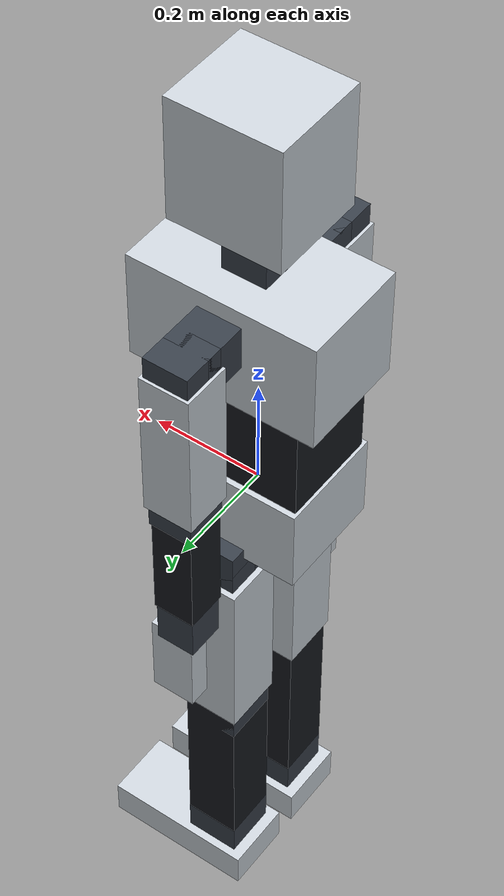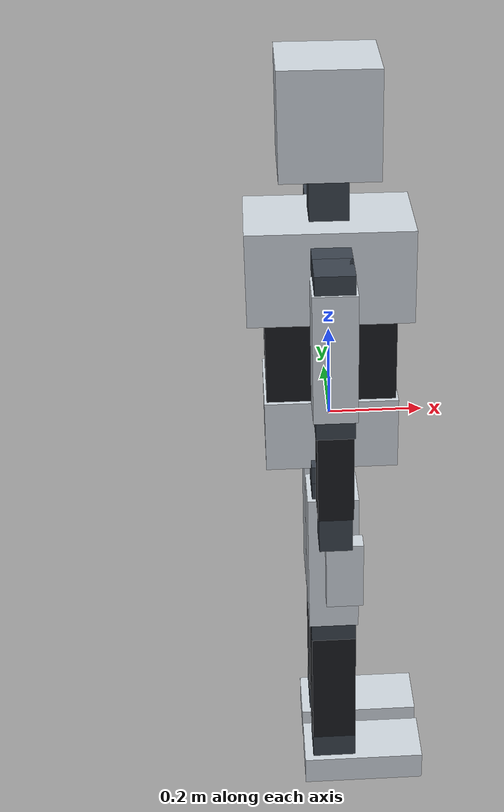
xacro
<?xml version="1.0"?>
<robot xmlns:xacro="http://www.ros.org/wiki/xacro" name="ayyo">
  <xacro:arg name="use_meshes" default="false"/>
  <xacro:arg name="simulation_mode" default="false"/>
  <xacro:arg name="simulation_static" default="true"/>
  <xacro:arg name="simulation_control" default="false"/>
  <xacro:arg name="simulation_manipulation_control" default="false"/>
  <xacro:arg name="simulation_manipulation_support" default="false"/>
  <xacro:arg name="simulation_localization" default="false"/>
  <xacro:arg name="simulation_camera" default="false"/>
  <xacro:arg name="simulation_depth_camera" default="false"/>
  <xacro:arg name="simulation_controller_config" default=""/>

  <xacro:include filename="ayyo_materials.xacro"/>
  <xacro:include filename="ayyo_geometry.xacro"/>
  <xacro:include filename="ayyo_body.xacro"/>
  <xacro:include filename="ayyo_gazebo.xacro"/>
  <xacro:include filename="ayyo_ros2_control.xacro"/>

  <xacro:ayyo_materials/>
  <xacro:ayyo_body use_meshes="$(arg use_meshes)"/>
  <xacro:if value="$(arg simulation_mode)">
    <xacro:ayyo_gazebo
      static_model="$(arg simulation_static)"
      control_enabled="$(arg simulation_control)"
      localization_enabled="$(arg simulation_localization)"
      camera_enabled="$(arg simulation_camera)"
      depth_camera_enabled="$(arg simulation_depth_camera)"
      controller_config="$(arg simulation_controller_config)"
      manipulation_control_enabled="$(arg simulation_manipulation_control)"
      manipulation_support_enabled="$(arg simulation_manipulation_support)"/>
    <xacro:if value="$(arg simulation_control)">
      <xacro:ayyo_ros2_control_system
        hardware_plugin="gz_ros2_control/GazeboSimSystem"
        manipulation_control="$(arg simulation_manipulation_control)"/>
    </xacro:if>
  </xacro:if>
</robot>

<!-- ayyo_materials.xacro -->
<robot xmlns:xacro="http://www.ros.org/wiki/xacro">
  <xacro:macro name="ayyo_materials">
    <material name="ayyo_charcoal">
      <color rgba="0.09 0.10 0.12 1.0"/>
    </material>
    <material name="ayyo_shell">
      <color rgba="0.80 0.83 0.86 1.0"/>
    </material>
    <material name="ayyo_joint">
      <color rgba="0.22 0.25 0.29 1.0"/>
    </material>
    <material name="ayyo_sensor">
      <color rgba="0.12 0.35 0.52 1.0"/>
    </material>
  </xacro:macro>
</robot>

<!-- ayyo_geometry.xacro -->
<robot xmlns:xacro="http://www.ros.org/wiki/xacro">
  <xacro:macro name="ayyo_box_link"
               params="name sx sy sz ox oy oz mass material mesh_name use_meshes">
    <link name="${name}">
      <inertial>
        <origin xyz="${ox} ${oy} ${oz}" rpy="0 0 0"/>
        <mass value="${mass}"/>
        <inertia
          ixx="${mass * (sy * sy + sz * sz) / 12.0}"
          ixy="0.0"
          ixz="0.0"
          iyy="${mass * (sx * sx + sz * sz) / 12.0}"
          iyz="0.0"
          izz="${mass * (sx * sx + sy * sy) / 12.0}"/>
      </inertial>
      <visual>
        <origin xyz="${ox} ${oy} ${oz}" rpy="0 0 0"/>
        <geometry>
          <xacro:if value="${use_meshes}">
            <mesh filename="package://ayyo_description/meshes/visual/${mesh_name}.dae"
                  scale="1 1 1"/>
          </xacro:if>
          <xacro:unless value="${use_meshes}">
            <box size="${sx} ${sy} ${sz}"/>
          </xacro:unless>
        </geometry>
        <xacro:unless value="${use_meshes}">
          <material name="${material}"/>
        </xacro:unless>
      </visual>
      <collision>
        <origin xyz="${ox} ${oy} ${oz}" rpy="0 0 0"/>
        <geometry>
          <xacro:if value="${use_meshes}">
            <mesh filename="package://ayyo_description/meshes/collision/${mesh_name}.stl"
                  scale="1 1 1"/>
          </xacro:if>
          <xacro:unless value="${use_meshes}">
            <box size="${sx} ${sy} ${sz}"/>
          </xacro:unless>
        </geometry>
      </collision>
    </link>
  </xacro:macro>

  <xacro:macro name="ayyo_frame_link" params="name">
    <link name="${name}"/>
  </xacro:macro>

  <xacro:macro name="ayyo_fixed_joint" params="name parent child xyz rpy">
    <joint name="${name}" type="fixed">
      <parent link="${parent}"/>
      <child link="${child}"/>
      <origin xyz="${xyz}" rpy="${rpy}"/>
    </joint>
  </xacro:macro>

  <xacro:macro name="ayyo_revolute_joint"
               params="name parent child xyz rpy axis lower upper effort velocity">
    <joint name="${name}" type="revolute">
      <parent link="${parent}"/>
      <child link="${child}"/>
      <origin xyz="${xyz}" rpy="${rpy}"/>
      <axis xyz="${axis}"/>
      <limit lower="${lower}" upper="${upper}"
             effort="${effort}" velocity="${velocity}"/>
      <dynamics damping="0.5" friction="0.1"/>
    </joint>
  </xacro:macro>
</robot>
